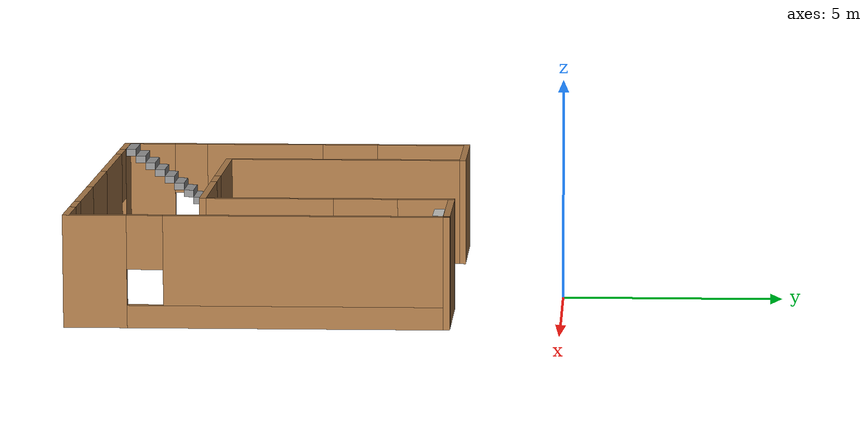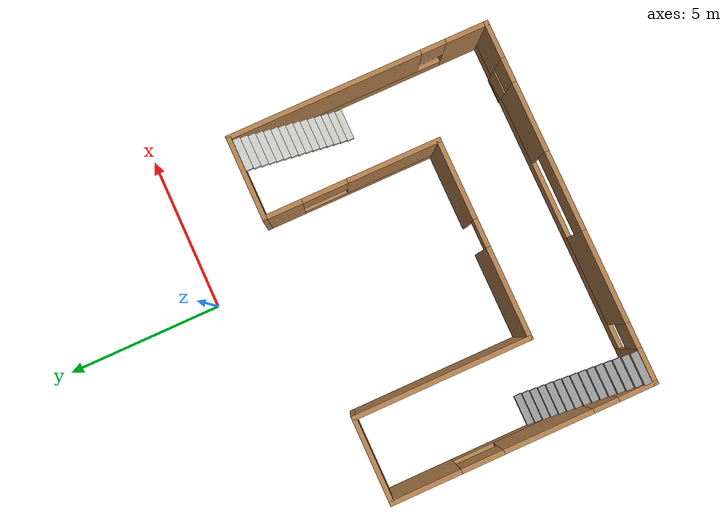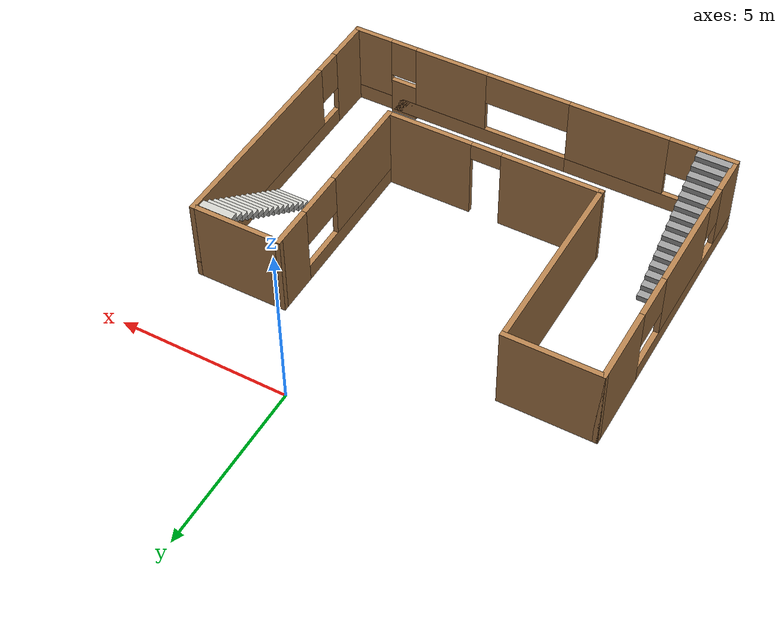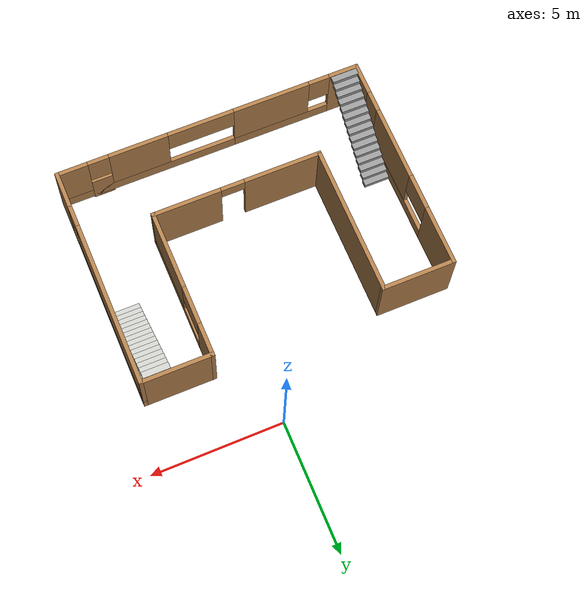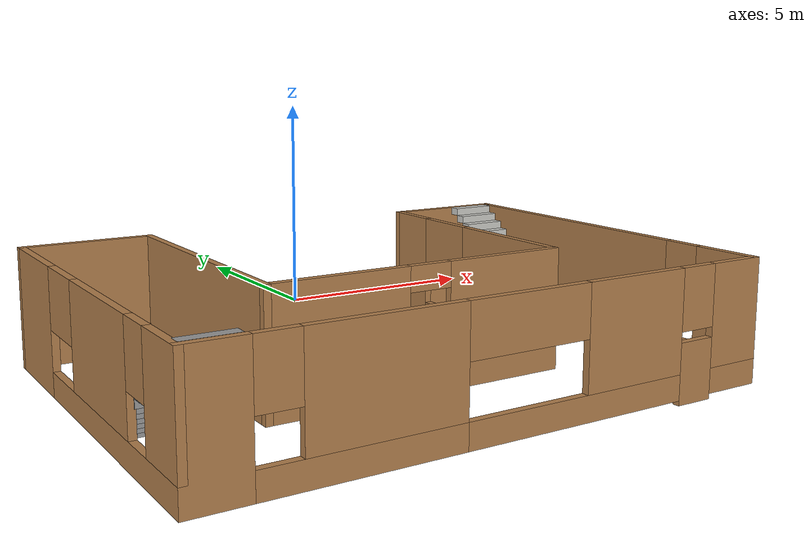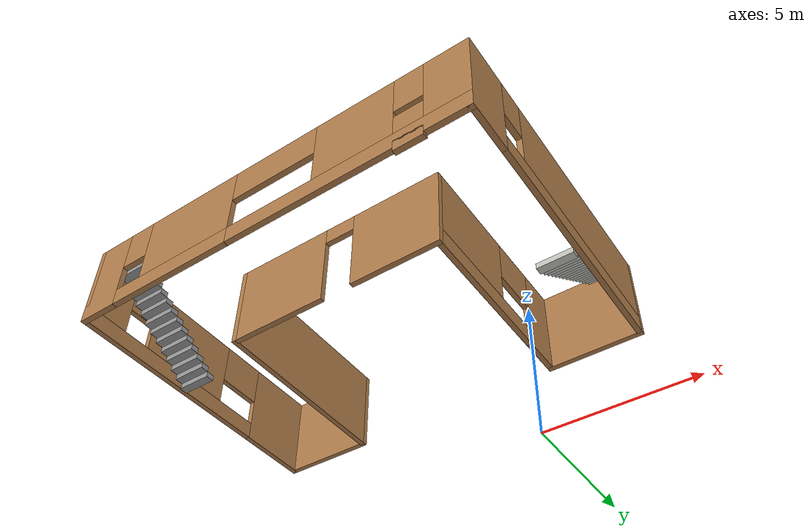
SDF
<?xml version='1.0'?>
<sdf version='1.6'>
  <model name='building0'>
    <pose frame=''>-1.57745 -6.6638 0 0 -0 0</pose>
    <link name='Stairs_0'>
      <visual name='Stairs_0_Visual_0'>
        <pose frame=''>5.18201 0.711332 0.083333 0 -0 -3.14159</pose>
        <geometry>
          <box>
            <size>1 0.233333 0.166667</size>
          </box>
        </geometry>
        <material>
          <script>
            <uri>file://media/materials/scripts/gazebo.material</uri>
            <name>Gazebo/CeilingTiled</name>
          </script>
          <ambient>1 1 1 1</ambient>
        </material>
        <meta>
          <layer>0</layer>
        </meta>
      </visual>
      <collision name='Stairs_0_Collision_0'>
        <geometry>
          <box>
            <size>1 0.233333 0.166667</size>
          </box>
        </geometry>
        <pose frame=''>5.18201 0.711332 0.083333 0 -0 -3.14159</pose>
      </collision>
      <visual name='Stairs_0_Visual_1'>
        <pose frame=''>5.18201 0.944665 0.25 0 -0 -3.14159</pose>
        <geometry>
          <box>
            <size>1 0.233333 0.166667</size>
          </box>
        </geometry>
        <material>
          <script>
            <uri>file://media/materials/scripts/gazebo.material</uri>
            <name>Gazebo/CeilingTiled</name>
          </script>
          <ambient>1 1 1 1</ambient>
        </material>
        <meta>
          <layer>0</layer>
        </meta>
      </visual>
      <collision name='Stairs_0_Collision_1'>
        <geometry>
          <box>
            <size>1 0.233333 0.166667</size>
          </box>
        </geometry>
        <pose frame=''>5.18201 0.944665 0.25 0 -0 -3.14159</pose>
      </collision>
      <visual name='Stairs_0_Visual_2'>
        <pose frame=''>5.18201 1.178 0.416667 0 -0 -3.14159</pose>
        <geometry>
          <box>
            <size>1 0.233333 0.166667</size>
          </box>
        </geometry>
        <material>
          <script>
            <uri>file://media/materials/scripts/gazebo.material</uri>
            <name>Gazebo/CeilingTiled</name>
          </script>
          <ambient>1 1 1 1</ambient>
        </material>
        <meta>
          <layer>0</layer>
        </meta>
      </visual>
      <collision name='Stairs_0_Collision_2'>
        <geometry>
          <box>
            <size>1 0.233333 0.166667</size>
          </box>
        </geometry>
        <pose frame=''>5.18201 1.178 0.416667 0 -0 -3.14159</pose>
      </collision>
      <visual name='Stairs_0_Visual_3'>
        <pose frame=''>5.18201 1.41133 0.583333 0 -0 -3.14159</pose>
        <geometry>
          <box>
            <size>1 0.233333 0.166667</size>
          </box>
        </geometry>
        <material>
          <script>
            <uri>file://media/materials/scripts/gazebo.material</uri>
            <name>Gazebo/CeilingTiled</name>
          </script>
          <ambient>1 1 1 1</ambient>
        </material>
        <meta>
          <layer>0</layer>
        </meta>
      </visual>
      <collision name='Stairs_0_Collision_3'>
        <geometry>
          <box>
            <size>1 0.233333 0.166667</size>
          </box>
        </geometry>
        <pose frame=''>5.18201 1.41133 0.583333 0 -0 -3.14159</pose>
      </collision>
      <visual name='Stairs_0_Visual_4'>
        <pose frame=''>5.18201 1.64467 0.75 0 -0 -3.14159</pose>
        <geometry>
          <box>
            <size>1 0.233333 0.166667</size>
          </box>
        </geometry>
        <material>
          <script>
            <uri>file://media/materials/scripts/gazebo.material</uri>
            <name>Gazebo/CeilingTiled</name>
          </script>
          <ambient>1 1 1 1</ambient>
        </material>
        <meta>
          <layer>0</layer>
        </meta>
      </visual>
      <collision name='Stairs_0_Collision_4'>
        <geometry>
          <box>
            <size>1 0.233333 0.166667</size>
          </box>
        </geometry>
        <pose frame=''>5.18201 1.64467 0.75 0 -0 -3.14159</pose>
      </collision>
      <visual name='Stairs_0_Visual_5'>
        <pose frame=''>5.18201 1.878 0.916667 0 -0 -3.14159</pose>
        <geometry>
          <box>
            <size>1 0.233333 0.166667</size>
          </box>
        </geometry>
        <material>
          <script>
            <uri>file://media/materials/scripts/gazebo.material</uri>
            <name>Gazebo/CeilingTiled</name>
          </script>
          <ambient>1 1 1 1</ambient>
        </material>
        <meta>
          <layer>0</layer>
        </meta>
      </visual>
      <collision name='Stairs_0_Collision_5'>
        <geometry>
          <box>
            <size>1 0.233333 0.166667</size>
          </box>
        </geometry>
        <pose frame=''>5.18201 1.878 0.916667 0 -0 -3.14159</pose>
      </collision>
      <visual name='Stairs_0_Visual_6'>
        <pose frame=''>5.18201 2.11133 1.08333 0 -0 -3.14159</pose>
        <geometry>
          <box>
            <size>1 0.233333 0.166667</size>
          </box>
        </geometry>
        <material>
          <script>
            <uri>file://media/materials/scripts/gazebo.material</uri>
            <name>Gazebo/CeilingTiled</name>
          </script>
          <ambient>1 1 1 1</ambient>
        </material>
        <meta>
          <layer>0</layer>
        </meta>
      </visual>
      <collision name='Stairs_0_Collision_6'>
        <geometry>
          <box>
            <size>1 0.233333 0.166667</size>
          </box>
        </geometry>
        <pose frame=''>5.18201 2.11133 1.08333 0 -0 -3.14159</pose>
      </collision>
      <visual name='Stairs_0_Visual_7'>
        <pose frame=''>5.18201 2.34466 1.25 0 -0 -3.14159</pose>
        <geometry>
          <box>
            <size>1 0.233333 0.166667</size>
          </box>
        </geometry>
        <material>
          <script>
            <uri>file://media/materials/scripts/gazebo.material</uri>
            <name>Gazebo/CeilingTiled</name>
          </script>
          <ambient>1 1 1 1</ambient>
        </material>
        <meta>
          <layer>0</layer>
        </meta>
      </visual>
      <collision name='Stairs_0_Collision_7'>
        <geometry>
          <box>
            <size>1 0.233333 0.166667</size>
          </box>
        </geometry>
        <pose frame=''>5.18201 2.34466 1.25 0 -0 -3.14159</pose>
      </collision>
      <visual name='Stairs_0_Visual_8'>
        <pose frame=''>5.18201 2.578 1.41667 0 -0 -3.14159</pose>
        <geometry>
          <box>
            <size>1 0.233333 0.166667</size>
          </box>
        </geometry>
        <material>
          <script>
            <uri>file://media/materials/scripts/gazebo.material</uri>
            <name>Gazebo/CeilingTiled</name>
          </script>
          <ambient>1 1 1 1</ambient>
        </material>
        <meta>
          <layer>0</layer>
        </meta>
      </visual>
      <collision name='Stairs_0_Collision_8'>
        <geometry>
          <box>
            <size>1 0.233333 0.166667</size>
          </box>
        </geometry>
        <pose frame=''>5.18201 2.578 1.41667 0 -0 -3.14159</pose>
      </collision>
      <visual name='Stairs_0_Visual_9'>
        <pose frame=''>5.18201 2.81133 1.58333 0 -0 -3.14159</pose>
        <geometry>
          <box>
            <size>1 0.233333 0.166667</size>
          </box>
        </geometry>
        <material>
          <script>
            <uri>file://media/materials/scripts/gazebo.material</uri>
            <name>Gazebo/CeilingTiled</name>
          </script>
          <ambient>1 1 1 1</ambient>
        </material>
        <meta>
          <layer>0</layer>
        </meta>
      </visual>
      <collision name='Stairs_0_Collision_9'>
        <geometry>
          <box>
            <size>1 0.233333 0.166667</size>
          </box>
        </geometry>
        <pose frame=''>5.18201 2.81133 1.58333 0 -0 -3.14159</pose>
      </collision>
      <visual name='Stairs_0_Visual_10'>
        <pose frame=''>5.18201 3.04467 1.75 0 -0 -3.14159</pose>
        <geometry>
          <box>
            <size>1 0.233333 0.166667</size>
          </box>
        </geometry>
        <material>
          <script>
            <uri>file://media/materials/scripts/gazebo.material</uri>
            <name>Gazebo/CeilingTiled</name>
          </script>
          <ambient>1 1 1 1</ambient>
        </material>
        <meta>
          <layer>0</layer>
        </meta>
      </visual>
      <collision name='Stairs_0_Collision_10'>
        <geometry>
          <box>
            <size>1 0.233333 0.166667</size>
          </box>
        </geometry>
        <pose frame=''>5.18201 3.04467 1.75 0 -0 -3.14159</pose>
      </collision>
      <visual name='Stairs_0_Visual_11'>
        <pose frame=''>5.18201 3.278 1.91667 0 -0 -3.14159</pose>
        <geometry>
          <box>
            <size>1 0.233333 0.166667</size>
          </box>
        </geometry>
        <material>
          <script>
            <uri>file://media/materials/scripts/gazebo.material</uri>
            <name>Gazebo/CeilingTiled</name>
          </script>
          <ambient>1 1 1 1</ambient>
        </material>
        <meta>
          <layer>0</layer>
        </meta>
      </visual>
      <collision name='Stairs_0_Collision_11'>
        <geometry>
          <box>
            <size>1 0.233333 0.166667</size>
          </box>
        </geometry>
        <pose frame=''>5.18201 3.278 1.91667 0 -0 -3.14159</pose>
      </collision>
      <visual name='Stairs_0_Visual_12'>
        <pose frame=''>5.18201 3.51133 2.08333 0 -0 -3.14159</pose>
        <geometry>
          <box>
            <size>1 0.233333 0.166667</size>
          </box>
        </geometry>
        <material>
          <script>
            <uri>file://media/materials/scripts/gazebo.material</uri>
            <name>Gazebo/CeilingTiled</name>
          </script>
          <ambient>1 1 1 1</ambient>
        </material>
        <meta>
          <layer>0</layer>
        </meta>
      </visual>
      <collision name='Stairs_0_Collision_12'>
        <geometry>
          <box>
            <size>1 0.233333 0.166667</size>
          </box>
        </geometry>
        <pose frame=''>5.18201 3.51133 2.08333 0 -0 -3.14159</pose>
      </collision>
      <visual name='Stairs_0_Visual_13'>
        <pose frame=''>5.18201 3.74466 2.25 0 -0 -3.14159</pose>
        <geometry>
          <box>
            <size>1 0.233333 0.166667</size>
          </box>
        </geometry>
        <material>
          <script>
            <uri>file://media/materials/scripts/gazebo.material</uri>
            <name>Gazebo/CeilingTiled</name>
          </script>
          <ambient>1 1 1 1</ambient>
        </material>
        <meta>
          <layer>0</layer>
        </meta>
      </visual>
      <collision name='Stairs_0_Collision_13'>
        <geometry>
          <box>
            <size>1 0.233333 0.166667</size>
          </box>
        </geometry>
        <pose frame=''>5.18201 3.74466 2.25 0 -0 -3.14159</pose>
      </collision>
      <visual name='Stairs_0_Visual_14'>
        <pose frame=''>5.18201 3.978 2.41667 0 -0 -3.14159</pose>
        <geometry>
          <box>
            <size>1 0.233333 0.166667</size>
          </box>
        </geometry>
        <material>
          <script>
            <uri>file://media/materials/scripts/gazebo.material</uri>
            <name>Gazebo/CeilingTiled</name>
          </script>
          <ambient>1 1 1 1</ambient>
        </material>
        <meta>
          <layer>0</layer>
        </meta>
      </visual>
      <collision name='Stairs_0_Collision_14'>
        <geometry>
          <box>
            <size>1 0.233333 0.166667</size>
          </box>
        </geometry>
        <pose frame=''>5.18201 3.978 2.41667 0 -0 -3.14159</pose>
      </collision>
    </link>
    <link name='Stairs_1'>
      <visual name='Stairs_1_Visual_0'>
        <pose frame=''>-5.25693 -0.708464 0.083333 0 -0 0</pose>
        <geometry>
          <box>
            <size>1 0.233333 0.166667</size>
          </box>
        </geometry>
        <material>
          <script>
            <uri>file://media/materials/scripts/gazebo.material</uri>
            <name>Gazebo/Grey</name>
          </script>
          <ambient>1 1 1 1</ambient>
        </material>
        <meta>
          <layer>0</layer>
        </meta>
      </visual>
      <collision name='Stairs_1_Collision_0'>
        <geometry>
          <box>
            <size>1 0.233333 0.166667</size>
          </box>
        </geometry>
        <pose frame=''>-5.25693 -0.708464 0.083333 0 -0 0</pose>
      </collision>
      <visual name='Stairs_1_Visual_1'>
        <pose frame=''>-5.25693 -0.941797 0.25 0 -0 0</pose>
        <geometry>
          <box>
            <size>1 0.233333 0.166667</size>
          </box>
        </geometry>
        <material>
          <script>
            <uri>file://media/materials/scripts/gazebo.material</uri>
            <name>Gazebo/Grey</name>
          </script>
          <ambient>1 1 1 1</ambient>
        </material>
        <meta>
          <layer>0</layer>
        </meta>
      </visual>
      <collision name='Stairs_1_Collision_1'>
        <geometry>
          <box>
            <size>1 0.233333 0.166667</size>
          </box>
        </geometry>
        <pose frame=''>-5.25693 -0.941797 0.25 0 -0 0</pose>
      </collision>
      <visual name='Stairs_1_Visual_2'>
        <pose frame=''>-5.25693 -1.17513 0.416667 0 -0 0</pose>
        <geometry>
          <box>
            <size>1 0.233333 0.166667</size>
          </box>
        </geometry>
        <material>
          <script>
            <uri>file://media/materials/scripts/gazebo.material</uri>
            <name>Gazebo/Grey</name>
          </script>
          <ambient>1 1 1 1</ambient>
        </material>
        <meta>
          <layer>0</layer>
        </meta>
      </visual>
      <collision name='Stairs_1_Collision_2'>
        <geometry>
          <box>
            <size>1 0.233333 0.166667</size>
          </box>
        </geometry>
        <pose frame=''>-5.25693 -1.17513 0.416667 0 -0 0</pose>
      </collision>
      <visual name='Stairs_1_Visual_3'>
        <pose frame=''>-5.25693 -1.40846 0.583333 0 -0 0</pose>
        <geometry>
          <box>
            <size>1 0.233333 0.166667</size>
          </box>
        </geometry>
        <material>
          <script>
            <uri>file://media/materials/scripts/gazebo.material</uri>
            <name>Gazebo/Grey</name>
          </script>
          <ambient>1 1 1 1</ambient>
        </material>
        <meta>
          <layer>0</layer>
        </meta>
      </visual>
      <collision name='Stairs_1_Collision_3'>
        <geometry>
          <box>
            <size>1 0.233333 0.166667</size>
          </box>
        </geometry>
        <pose frame=''>-5.25693 -1.40846 0.583333 0 -0 0</pose>
      </collision>
      <visual name='Stairs_1_Visual_4'>
        <pose frame=''>-5.25693 -1.6418 0.75 0 -0 0</pose>
        <geometry>
          <box>
            <size>1 0.233333 0.166667</size>
          </box>
        </geometry>
        <material>
          <script>
            <uri>file://media/materials/scripts/gazebo.material</uri>
            <name>Gazebo/Grey</name>
          </script>
          <ambient>1 1 1 1</ambient>
        </material>
        <meta>
          <layer>0</layer>
        </meta>
      </visual>
      <collision name='Stairs_1_Collision_4'>
        <geometry>
          <box>
            <size>1 0.233333 0.166667</size>
          </box>
        </geometry>
        <pose frame=''>-5.25693 -1.6418 0.75 0 -0 0</pose>
      </collision>
      <visual name='Stairs_1_Visual_5'>
        <pose frame=''>-5.25693 -1.87513 0.916667 0 -0 0</pose>
        <geometry>
          <box>
            <size>1 0.233333 0.166667</size>
          </box>
        </geometry>
        <material>
          <script>
            <uri>file://media/materials/scripts/gazebo.material</uri>
            <name>Gazebo/Grey</name>
          </script>
          <ambient>1 1 1 1</ambient>
        </material>
        <meta>
          <layer>0</layer>
        </meta>
      </visual>
      <collision name='Stairs_1_Collision_5'>
        <geometry>
          <box>
            <size>1 0.233333 0.166667</size>
          </box>
        </geometry>
        <pose frame=''>-5.25693 -1.87513 0.916667 0 -0 0</pose>
      </collision>
      <visual name='Stairs_1_Visual_6'>
        <pose frame=''>-5.25693 -2.10846 1.08333 0 -0 0</pose>
        <geometry>
          <box>
            <size>1 0.233333 0.166667</size>
          </box>
        </geometry>
        <material>
          <script>
            <uri>file://media/materials/scripts/gazebo.material</uri>
            <name>Gazebo/Grey</name>
          </script>
          <ambient>1 1 1 1</ambient>
        </material>
        <meta>
          <layer>0</layer>
        </meta>
      </visual>
      <collision name='Stairs_1_Collision_6'>
        <geometry>
          <box>
            <size>1 0.233333 0.166667</size>
          </box>
        </geometry>
        <pose frame=''>-5.25693 -2.10846 1.08333 0 -0 0</pose>
      </collision>
      <visual name='Stairs_1_Visual_7'>
        <pose frame=''>-5.25693 -2.3418 1.25 0 -0 0</pose>
        <geometry>
          <box>
            <size>1 0.233333 0.166667</size>
          </box>
        </geometry>
        <material>
          <script>
            <uri>file://media/materials/scripts/gazebo.material</uri>
            <name>Gazebo/Grey</name>
          </script>
          <ambient>1 1 1 1</ambient>
        </material>
        <meta>
          <layer>0</layer>
        </meta>
      </visual>
      <collision name='Stairs_1_Collision_7'>
        <geometry>
          <box>
            <size>1 0.233333 0.166667</size>
          </box>
        </geometry>
        <pose frame=''>-5.25693 -2.3418 1.25 0 -0 0</pose>
      </collision>
      <visual name='Stairs_1_Visual_8'>
        <pose frame=''>-5.25693 -2.57513 1.41667 0 -0 0</pose>
        <geometry>
          <box>
            <size>1 0.233333 0.166667</size>
          </box>
        </geometry>
        <material>
          <script>
            <uri>file://media/materials/scripts/gazebo.material</uri>
            <name>Gazebo/Grey</name>
          </script>
          <ambient>1 1 1 1</ambient>
        </material>
        <meta>
          <layer>0</layer>
        </meta>
      </visual>
      <collision name='Stairs_1_Collision_8'>
        <geometry>
          <box>
            <size>1 0.233333 0.166667</size>
          </box>
        </geometry>
        <pose frame=''>-5.25693 -2.57513 1.41667 0 -0 0</pose>
      </collision>
      <visual name='Stairs_1_Visual_9'>
        <pose frame=''>-5.25693 -2.80846 1.58333 0 -0 0</pose>
        <geometry>
          <box>
            <size>1 0.233333 0.166667</size>
          </box>
        </geometry>
        <material>
          <script>
            <uri>file://media/materials/scripts/gazebo.material</uri>
            <name>Gazebo/Grey</name>
          </script>
          <ambient>1 1 1 1</ambient>
        </material>
        <meta>
          <layer>0</layer>
        </meta>
      </visual>
      <collision name='Stairs_1_Collision_9'>
        <geometry>
          <box>
            <size>1 0.233333 0.166667</size>
          </box>
        </geometry>
        <pose frame=''>-5.25693 -2.80846 1.58333 0 -0 0</pose>
      </collision>
      <visual name='Stairs_1_Visual_10'>
        <pose frame=''>-5.25693 -3.0418 1.75 0 -0 0</pose>
        <geometry>
          <box>
            <size>1 0.233333 0.166667</size>
          </box>
        </geometry>
        <material>
          <script>
            <uri>file://media/materials/scripts/gazebo.material</uri>
            <name>Gazebo/Grey</name>
          </script>
          <ambient>1 1 1 1</ambient>
        </material>
        <meta>
          <layer>0</layer>
        </meta>
      </visual>
      <collision name='Stairs_1_Collision_10'>
        <geometry>
          <box>
            <size>1 0.233333 0.166667</size>
          </box>
        </geometry>
        <pose frame=''>-5.25693 -3.0418 1.75 0 -0 0</pose>
      </collision>
      <visual name='Stairs_1_Visual_11'>
        <pose frame=''>-5.25693 -3.27513 1.91667 0 -0 0</pose>
        <geometry>
          <box>
            <size>1 0.233333 0.166667</size>
          </box>
        </geometry>
        <material>
          <script>
            <uri>file://media/materials/scripts/gazebo.material</uri>
            <name>Gazebo/Grey</name>
          </script>
          <ambient>1 1 1 1</ambient>
        </material>
        <meta>
          <layer>0</layer>
        </meta>
      </visual>
      <collision name='Stairs_1_Collision_11'>
        <geometry>
          <box>
            <size>1 0.233333 0.166667</size>
          </box>
        </geometry>
        <pose frame=''>-5.25693 -3.27513 1.91667 0 -0 0</pose>
      </collision>
      <visual name='Stairs_1_Visual_12'>
        <pose frame=''>-5.25693 -3.50846 2.08333 0 -0 0</pose>
        <geometry>
          <box>
            <size>1 0.233333 0.166667</size>
          </box>
        </geometry>
        <material>
          <script>
            <uri>file://media/materials/scripts/gazebo.material</uri>
            <name>Gazebo/Grey</name>
          </script>
          <ambient>1 1 1 1</ambient>
        </material>
        <meta>
          <layer>0</layer>
        </meta>
      </visual>
      <collision name='Stairs_1_Collision_12'>
        <geometry>
          <box>
            <size>1 0.233333 0.166667</size>
          </box>
        </geometry>
        <pose frame=''>-5.25693 -3.50846 2.08333 0 -0 0</pose>
      </collision>
      <visual name='Stairs_1_Visual_13'>
        <pose frame=''>-5.25693 -3.7418 2.25 0 -0 0</pose>
        <geometry>
          <box>
            <size>1 0.233333 0.166667</size>
          </box>
        </geometry>
        <material>
          <script>
            <uri>file://media/materials/scripts/gazebo.material</uri>
            <name>Gazebo/Grey</name>
          </script>
          <ambient>1 1 1 1</ambient>
        </material>
        <meta>
          <layer>0</layer>
        </meta>
      </visual>
      <collision name='Stairs_1_Collision_13'>
        <geometry>
          <box>
            <size>1 0.233333 0.166667</size>
          </box>
        </geometry>
        <pose frame=''>-5.25693 -3.7418 2.25 0 -0 0</pose>
      </collision>
      <visual name='Stairs_1_Visual_14'>
        <pose frame=''>-5.25693 -3.97513 2.41667 0 -0 0</pose>
        <geometry>
          <box>
            <size>1 0.233333 0.166667</size>
          </box>
        </geometry>
        <material>
          <script>
            <uri>file://media/materials/scripts/gazebo.material</uri>
            <name>Gazebo/Grey</name>
          </script>
          <ambient>1 1 1 1</ambient>
        </material>
        <meta>
          <layer>0</layer>
        </meta>
      </visual>
      <collision name='Stairs_1_Collision_14'>
        <geometry>
          <box>
            <size>1 0.233333 0.166667</size>
          </box>
        </geometry>
        <pose frame=''>-5.25693 -3.97513 2.41667 0 -0 0</pose>
      </collision>
    </link>
    <link name='Wall_29'>
      <pose frame=''>-5.8 0 0 0 0 -1.5708</pose>
      <visual name='Wall_29_Visual_0'>
        <pose frame=''>-3.11517 0 1.25 0 -0 0</pose>
        <geometry>
          <box>
            <size>2.26965 0.15 2.5</size>
          </box>
        </geometry>
        <material>
          <script>
            <uri>file://media/materials/scripts/gazebo.material</uri>
            <name>Gazebo/Wood</name>
          </script>
          <ambient>1 0.764706 0.305882 1</ambient>
        </material>
        <meta>
          <layer>0</layer>
        </meta>
      </visual>
      <collision name='Wall_29_Collision_0'>
        <geometry>
          <box>
            <size>2.26965 0.15 2.5</size>
          </box>
        </geometry>
        <pose frame=''>-3.11517 0 1.25 0 -0 0</pose>
      </collision>
      <visual name='Wall_29_Visual_1'>
        <pose frame=''>1.13482 0 0.25 0 -0 0</pose>
        <geometry>
          <box>
            <size>6.23035 0.15 0.5</size>
          </box>
        </geometry>
        <material>
          <script>
            <uri>file://media/materials/scripts/gazebo.material</uri>
            <name>Gazebo/Wood</name>
          </script>
          <ambient>1 0.764706 0.305882 1</ambient>
        </material>
        <meta>
          <layer>0</layer>
        </meta>
      </visual>
      <collision name='Wall_29_Collision_1'>
        <geometry>
          <box>
            <size>6.23035 0.15 0.5</size>
          </box>
        </geometry>
        <pose frame=''>1.13482 0 0.25 0 -0 0</pose>
      </collision>
      <visual name='Wall_29_Visual_2'>
        <pose frame=''>0.782995 0 1.5 0 -0 0</pose>
        <geometry>
          <box>
            <size>2.84056 0.15 2</size>
          </box>
        </geometry>
        <material>
          <script>
            <uri>file://media/materials/scripts/gazebo.material</uri>
            <name>Gazebo/Wood</name>
          </script>
          <ambient>1 0.764706 0.305882 1</ambient>
        </material>
        <meta>
          <layer>0</layer>
        </meta>
      </visual>
      <collision name='Wall_29_Collision_2'>
        <geometry>
          <box>
            <size>2.84056 0.15 2</size>
          </box>
        </geometry>
        <pose frame=''>0.782995 0 1.5 0 -0 0</pose>
      </collision>
      <visual name='Wall_29_Visual_3'>
        <pose frame=''>3.62664 0 1.5 0 -0 0</pose>
        <geometry>
          <box>
            <size>1.24673 0.15 2</size>
          </box>
        </geometry>
        <material>
          <script>
            <uri>file://media/materials/scripts/gazebo.material</uri>
            <name>Gazebo/Wood</name>
          </script>
          <ambient>1 0.764706 0.305882 1</ambient>
        </material>
        <meta>
          <layer>0</layer>
        </meta>
      </visual>
      <collision name='Wall_29_Collision_3'>
        <geometry>
          <box>
            <size>1.24673 0.15 2</size>
          </box>
        </geometry>
        <pose frame=''>3.62664 0 1.5 0 -0 0</pose>
      </collision>
      <visual name='Wall_29_Visual_4'>
        <pose frame=''>-1.30882 0 1.9 0 -0 0</pose>
        <geometry>
          <box>
            <size>1.34307 0.15 1.2</size>
          </box>
        </geometry>
        <material>
          <script>
            <uri>file://media/materials/scripts/gazebo.material</uri>
            <name>Gazebo/Wood</name>
          </script>
          <ambient>1 0.764706 0.305882 1</ambient>
        </material>
        <meta>
          <layer>0</layer>
        </meta>
      </visual>
      <collision name='Wall_29_Collision_4'>
        <geometry>
          <box>
            <size>1.34307 0.15 1.2</size>
          </box>
        </geometry>
        <pose frame=''>-1.30882 0 1.9 0 -0 0</pose>
      </collision>
      <visual name='Wall_29_Visual_5'>
        <pose frame=''>2.60327 0 1.9 0 -0 0</pose>
        <geometry>
          <box>
            <size>0.8 0.15 1.2</size>
          </box>
        </geometry>
        <material>
          <script>
            <uri>file://media/materials/scripts/gazebo.material</uri>
            <name>Gazebo/Wood</name>
          </script>
          <ambient>1 0.764706 0.305882 1</ambient>
        </material>
        <meta>
          <layer>0</layer>
        </meta>
      </visual>
      <collision name='Wall_29_Collision_5'>
        <geometry>
          <box>
            <size>0.8 0.15 1.2</size>
          </box>
        </geometry>
        <pose frame=''>2.60327 0 1.9 0 -0 0</pose>
      </collision>
    </link>
    <link name='Wall_30'>
      <pose frame=''>0 -4.175 0 0 -0 0</pose>
      <visual name='Wall_30_Visual_0'>
        <pose frame=''>-5.2933 0 1.25 0 -0 0</pose>
        <geometry>
          <box>
            <size>1.1634 0.15 2.5</size>
          </box>
        </geometry>
        <material>
          <script>
            <uri>file://media/materials/scripts/gazebo.material</uri>
            <name>Gazebo/Wood</name>
          </script>
          <ambient>1 0.764706 0.305882 1</ambient>
        </material>
        <meta>
          <layer>0</layer>
        </meta>
      </visual>
      <collision name='Wall_30_Collision_0'>
        <geometry>
          <box>
            <size>1.1634 0.15 2.5</size>
          </box>
        </geometry>
        <pose frame=''>-5.2933 0 1.25 0 -0 0</pose>
      </collision>
      <visual name='Wall_30_Visual_1'>
        <pose frame=''>-2.83101 0 0.25 0 -0 0</pose>
        <geometry>
          <box>
            <size>3.76118 0.15 0.5</size>
          </box>
        </geometry>
        <material>
          <script>
            <uri>file://media/materials/scripts/gazebo.material</uri>
            <name>Gazebo/Wood</name>
          </script>
          <ambient>1 0.764706 0.305882 1</ambient>
        </material>
        <meta>
          <layer>0</layer>
        </meta>
      </visual>
      <collision name='Wall_30_Collision_1'>
        <geometry>
          <box>
            <size>3.76118 0.15 0.5</size>
          </box>
        </geometry>
        <pose frame=''>-2.83101 0 0.25 0 -0 0</pose>
      </collision>
      <visual name='Wall_30_Visual_2'>
        <pose frame=''>2.46229 0 0.25 0 -0 0</pose>
        <geometry>
          <box>
            <size>6.82542 0.15 0.5</size>
          </box>
        </geometry>
        <material>
          <script>
            <uri>file://media/materials/scripts/gazebo.material</uri>
            <name>Gazebo/Wood</name>
          </script>
          <ambient>1 0.764706 0.305882 1</ambient>
        </material>
        <meta>
          <layer>0</layer>
        </meta>
      </visual>
      <collision name='Wall_30_Collision_2'>
        <geometry>
          <box>
            <size>6.82542 0.15 0.5</size>
          </box>
        </geometry>
        <pose frame=''>2.46229 0 0.25 0 -0 0</pose>
      </collision>
      <visual name='Wall_30_Visual_3'>
        <pose frame=''>2.72818 0 1.5 0 -0 0</pose>
        <geometry>
          <box>
            <size>2.2572 0.15 2</size>
          </box>
        </geometry>
        <material>
          <script>
            <uri>file://media/materials/scripts/gazebo.material</uri>
            <name>Gazebo/Wood</name>
          </script>
          <ambient>1 0.764706 0.305882 1</ambient>
        </material>
        <meta>
          <layer>0</layer>
        </meta>
      </visual>
      <collision name='Wall_30_Collision_3'>
        <geometry>
          <box>
            <size>2.2572 0.15 2</size>
          </box>
        </geometry>
        <pose frame=''>2.72818 0 1.5 0 -0 0</pose>
      </collision>
      <visual name='Wall_30_Visual_4'>
        <pose frame=''>5.26589 0 1.5 0 -0 0</pose>
        <geometry>
          <box>
            <size>1.21821 0.15 2</size>
          </box>
        </geometry>
        <material>
          <script>
            <uri>file://media/materials/scripts/gazebo.material</uri>
            <name>Gazebo/Wood</name>
          </script>
          <ambient>1 0.764706 0.305882 1</ambient>
        </material>
        <meta>
          <layer>0</layer>
        </meta>
      </visual>
      <collision name='Wall_30_Collision_4'>
        <geometry>
          <box>
            <size>1.21821 0.15 2</size>
          </box>
        </geometry>
        <pose frame=''>5.26589 0 1.5 0 -0 0</pose>
      </collision>
      <visual name='Wall_30_Visual_5'>
        <pose frame=''>4.25679 0 0.5 0 -0 0</pose>
        <geometry>
          <box>
            <size>0.8 0.15 1.2</size>
          </box>
        </geometry>
        <material>
          <script>
            <uri>file://media/materials/scripts/gazebo.material</uri>
            <name>Gazebo/Wood</name>
          </script>
          <ambient>1 0.764706 0.305882 1</ambient>
        </material>
        <meta>
          <layer>0</layer>
        </meta>
      </visual>
      <collision name='Wall_30_Collision_5'>
        <geometry>
          <box>
            <size>0.8 0.15 1.2</size>
          </box>
        </geometry>
        <pose frame=''>4.25679 0 0.5 0 -0 0</pose>
      </collision>
      <visual name='Wall_30_Visual_6'>
        <pose frame=''>-2.43101 0 1.5 0 -0 0</pose>
        <geometry>
          <box>
            <size>2.96118 0.15 2</size>
          </box>
        </geometry>
        <material>
          <script>
            <uri>file://media/materials/scripts/gazebo.material</uri>
            <name>Gazebo/Wood</name>
          </script>
          <ambient>1 0.764706 0.305882 1</ambient>
        </material>
        <meta>
          <layer>0</layer>
        </meta>
      </visual>
      <collision name='Wall_30_Collision_6'>
        <geometry>
          <box>
            <size>2.96118 0.15 2</size>
          </box>
        </geometry>
        <pose frame=''>-2.43101 0 1.5 0 -0 0</pose>
      </collision>
      <visual name='Wall_30_Visual_7'>
        <pose frame=''>-2.43101 0 1.5 0 -0 0</pose>
        <geometry>
          <box>
            <size>2.96118 0.15 2</size>
          </box>
        </geometry>
        <material>
          <script>
            <uri>file://media/materials/scripts/gazebo.material</uri>
            <name>Gazebo/Wood</name>
          </script>
          <ambient>1 0.764706 0.305882 1</ambient>
        </material>
        <meta>
          <layer>0</layer>
        </meta>
      </visual>
      <collision name='Wall_30_Collision_7'>
        <geometry>
          <box>
            <size>2.96118 0.15 2</size>
          </box>
        </geometry>
        <pose frame=''>-2.43101 0 1.5 0 -0 0</pose>
      </collision>
      <visual name='Wall_30_Visual_8'>
        <pose frame=''>-4.3116 0 1.9 0 -0 0</pose>
        <geometry>
          <box>
            <size>0.8 0.15 1.2</size>
          </box>
        </geometry>
        <material>
          <script>
            <uri>file://media/materials/scripts/gazebo.material</uri>
            <name>Gazebo/Wood</name>
          </script>
          <ambient>1 0.764706 0.305882 1</ambient>
        </material>
        <meta>
          <layer>0</layer>
        </meta>
      </visual>
      <collision name='Wall_30_Collision_8'>
        <geometry>
          <box>
            <size>0.8 0.15 1.2</size>
          </box>
        </geometry>
        <pose frame=''>-4.3116 0 1.9 0 -0 0</pose>
      </collision>
      <visual name='Wall_30_Visual_9'>
        <pose frame=''>4.25679 0 1.9 0 -0 0</pose>
        <geometry>
          <box>
            <size>0.8 0.15 1.2</size>
          </box>
        </geometry>
        <material>
          <script>
            <uri>file://media/materials/scripts/gazebo.material</uri>
            <name>Gazebo/Wood</name>
          </script>
          <ambient>1 0.764706 0.305882 1</ambient>
        </material>
        <meta>
          <layer>0</layer>
        </meta>
      </visual>
      <collision name='Wall_30_Collision_9'>
        <geometry>
          <box>
            <size>0.8 0.15 1.2</size>
          </box>
        </geometry>
        <pose frame=''>4.25679 0 1.9 0 -0 0</pose>
      </collision>
      <visual name='Wall_30_Visual_10'>
        <pose frame=''>0.324583 0 2 0 -0 0</pose>
        <geometry>
          <box>
            <size>2.55 0.15 1</size>
          </box>
        </geometry>
        <material>
          <script>
            <uri>file://media/materials/scripts/gazebo.material</uri>
            <name>Gazebo/Wood</name>
          </script>
          <ambient>1 0.764706 0.305882 1</ambient>
        </material>
        <meta>
          <layer>0</layer>
        </meta>
      </visual>
      <collision name='Wall_30_Collision_10'>
        <geometry>
          <box>
            <size>2.55 0.15 1</size>
          </box>
        </geometry>
        <pose frame=''>0.324583 0 2 0 -0 0</pose>
      </collision>
      <visual name='Wall_30_Visual_11'>
        <pose frame=''>0.324583 0 2 0 -0 0</pose>
        <geometry>
          <box>
            <size>2.55 0.15 1</size>
          </box>
        </geometry>
        <material>
          <script>
            <uri>file://media/materials/scripts/gazebo.material</uri>
            <name>Gazebo/Wood</name>
          </script>
          <ambient>1 0.764706 0.305882 1</ambient>
        </material>
        <meta>
          <layer>0</layer>
        </meta>
      </visual>
      <collision name='Wall_30_Collision_11'>
        <geometry>
          <box>
            <size>2.55 0.15 1</size>
          </box>
        </geometry>
        <pose frame=''>0.324583 0 2 0 -0 0</pose>
      </collision>
    </link>
    <link name='Wall_31'>
      <pose frame=''>5.8 0 0 0 -0 1.5708</pose>
      <visual name='Wall_31_Visual_0'>
        <pose frame=''>-3.54618 0 1.25 0 -0 0</pose>
        <geometry>
          <box>
            <size>1.40763 0.15 2.5</size>
          </box>
        </geometry>
        <material>
          <script>
            <uri>file://media/materials/scripts/gazebo.material</uri>
            <name>Gazebo/Wood</name>
          </script>
          <ambient>1 0.764706 0.305882 1</ambient>
        </material>
        <meta>
          <layer>0</layer>
        </meta>
      </visual>
      <collision name='Wall_31_Collision_0'>
        <geometry>
          <box>
            <size>1.40763 0.15 2.5</size>
          </box>
        </geometry>
        <pose frame=''>-3.54618 0 1.25 0 -0 0</pose>
      </collision>
      <visual name='Wall_31_Visual_1'>
        <pose frame=''>0.703818 0 0.25 0 -0 0</pose>
        <geometry>
          <box>
            <size>7.09237 0.15 0.5</size>
          </box>
        </geometry>
        <material>
          <script>
            <uri>file://media/materials/scripts/gazebo.material</uri>
            <name>Gazebo/Wood</name>
          </script>
          <ambient>1 0.764706 0.305882 1</ambient>
        </material>
        <meta>
          <layer>0</layer>
        </meta>
      </visual>
      <collision name='Wall_31_Collision_1'>
        <geometry>
          <box>
            <size>7.09237 0.15 0.5</size>
          </box>
        </geometry>
        <pose frame=''>0.703818 0 0.25 0 -0 0</pose>
      </collision>
      <visual name='Wall_31_Visual_2'>
        <pose frame=''>1.10382 0 1.5 0 -0 0</pose>
        <geometry>
          <box>
            <size>6.29237 0.15 2</size>
          </box>
        </geometry>
        <material>
          <script>
            <uri>file://media/materials/scripts/gazebo.material</uri>
            <name>Gazebo/Wood</name>
          </script>
          <ambient>1 0.764706 0.305882 1</ambient>
        </material>
        <meta>
          <layer>0</layer>
        </meta>
      </visual>
      <collision name='Wall_31_Collision_2'>
        <geometry>
          <box>
            <size>6.29237 0.15 2</size>
          </box>
        </geometry>
        <pose frame=''>1.10382 0 1.5 0 -0 0</pose>
      </collision>
      <visual name='Wall_31_Visual_3'>
        <pose frame=''>-2.44237 0 1.9 0 -0 0</pose>
        <geometry>
          <box>
            <size>0.8 0.15 1.2</size>
          </box>
        </geometry>
        <material>
          <script>
            <uri>file://media/materials/scripts/gazebo.material</uri>
            <name>Gazebo/Wood</name>
          </script>
          <ambient>1 0.764706 0.305882 1</ambient>
        </material>
        <meta>
          <layer>0</layer>
        </meta>
      </visual>
      <collision name='Wall_31_Collision_3'>
        <geometry>
          <box>
            <size>0.8 0.15 1.2</size>
          </box>
        </geometry>
        <pose frame=''>-2.44237 0 1.9 0 -0 0</pose>
      </collision>
    </link>
    <link name='Wall_32'>
      <collision name='Wall_32_Collision'>
        <geometry>
          <box>
            <size>2.75 0.15 2.5</size>
          </box>
        </geometry>
        <pose frame=''>0 0 1.25 0 -0 0</pose>
      </collision>
      <visual name='Wall_32_Visual'>
        <pose frame=''>0 0 1.25 0 -0 0</pose>
        <geometry>
          <box>
            <size>2.75 0.15 2.5</size>
          </box>
        </geometry>
        <material>
          <script>
            <uri>file://media/materials/scripts/gazebo.material</uri>
            <name>Gazebo/Wood</name>
          </script>
          <ambient>1 0.764706 0.305882 1</ambient>
        </material>
        <meta>
          <layer>0</layer>
        </meta>
      </visual>
      <pose frame=''>4.5 4.175 0 0 -0 3.14159</pose>
    </link>
    <link name='Wall_33'>
      <pose frame=''>3.2 1.375 0 0 0 -1.5708</pose>
      <visual name='Wall_33_Visual_0'>
        <pose frame=''>-2.23296 0 1.25 0 -0 0</pose>
        <geometry>
          <box>
            <size>1.28409 0.15 2.5</size>
          </box>
        </geometry>
        <material>
          <script>
            <uri>file://media/materials/scripts/gazebo.material</uri>
            <name>Gazebo/Wood</name>
          </script>
          <ambient>1 0.764706 0.305882 1</ambient>
        </material>
        <meta>
          <layer>0</layer>
        </meta>
      </visual>
      <collision name='Wall_33_Collision_0'>
        <geometry>
          <box>
            <size>1.28409 0.15 2.5</size>
          </box>
        </geometry>
        <pose frame=''>-2.23296 0 1.25 0 -0 0</pose>
      </collision>
      <visual name='Wall_33_Visual_1'>
        <pose frame=''>0.642043 0 0.25 0 -0 0</pose>
        <geometry>
          <box>
            <size>4.46591 0.15 0.5</size>
          </box>
        </geometry>
        <material>
          <script>
            <uri>file://media/materials/scripts/gazebo.material</uri>
            <name>Gazebo/Wood</name>
          </script>
          <ambient>1 0.764706 0.305882 1</ambient>
        </material>
        <meta>
          <layer>0</layer>
        </meta>
      </visual>
      <collision name='Wall_33_Collision_1'>
        <geometry>
          <box>
            <size>4.46591 0.15 0.5</size>
          </box>
        </geometry>
        <pose frame=''>0.642043 0 0.25 0 -0 0</pose>
      </collision>
      <visual name='Wall_33_Visual_2'>
        <pose frame=''>1.36386 0 1.5 0 -0 0</pose>
        <geometry>
          <box>
            <size>3.02228 0.15 2</size>
          </box>
        </geometry>
        <material>
          <script>
            <uri>file://media/materials/scripts/gazebo.material</uri>
            <name>Gazebo/Wood</name>
          </script>
          <ambient>1 0.764706 0.305882 1</ambient>
        </material>
        <meta>
          <layer>0</layer>
        </meta>
      </visual>
      <collision name='Wall_33_Collision_2'>
        <geometry>
          <box>
            <size>3.02228 0.15 2</size>
          </box>
        </geometry>
        <pose frame=''>1.36386 0 1.5 0 -0 0</pose>
      </collision>
      <visual name='Wall_33_Visual_3'>
        <pose frame=''>-0.869097 0 1.9 0 -0 0</pose>
        <geometry>
          <box>
            <size>1.44363 0.15 1.2</size>
          </box>
        </geometry>
        <material>
          <script>
            <uri>file://media/materials/scripts/gazebo.material</uri>
            <name>Gazebo/Wood</name>
          </script>
          <ambient>1 0.764706 0.305882 1</ambient>
        </material>
        <meta>
          <layer>0</layer>
        </meta>
      </visual>
      <collision name='Wall_33_Collision_3'>
        <geometry>
          <box>
            <size>1.44363 0.15 1.2</size>
          </box>
        </geometry>
        <pose frame=''>-0.869097 0 1.9 0 -0 0</pose>
      </collision>
    </link>
    <link name='Wall_34'>
      <pose frame=''>0.025 -1.425 0 0 -0 3.14159</pose>
      <visual name='Wall_34_Visual_0'>
        <pose frame=''>-1.93442 0 1.25 0 -0 0</pose>
        <geometry>
          <box>
            <size>2.63116 0.15 2.5</size>
          </box>
        </geometry>
        <material>
          <script>
            <uri>file://media/materials/scripts/gazebo.material</uri>
            <name>Gazebo/Wood</name>
          </script>
          <ambient>1 0.764706 0.305882 1</ambient>
        </material>
        <meta>
          <layer>0</layer>
        </meta>
      </visual>
      <collision name='Wall_34_Collision_0'>
        <geometry>
          <box>
            <size>2.63116 0.15 2.5</size>
          </box>
        </geometry>
        <pose frame=''>-1.93442 0 1.25 0 -0 0</pose>
      </collision>
      <visual name='Wall_34_Visual_1'>
        <pose frame=''>1.76558 0 1.25 0 -0 0</pose>
        <geometry>
          <box>
            <size>2.96884 0.15 2.5</size>
          </box>
        </geometry>
        <material>
          <script>
            <uri>file://media/materials/scripts/gazebo.material</uri>
            <name>Gazebo/Wood</name>
          </script>
          <ambient>1 0.764706 0.305882 1</ambient>
        </material>
        <meta>
          <layer>0</layer>
        </meta>
      </visual>
      <collision name='Wall_34_Collision_1'>
        <geometry>
          <box>
            <size>2.96884 0.15 2.5</size>
          </box>
        </geometry>
        <pose frame=''>1.76558 0 1.25 0 -0 0</pose>
      </collision>
      <visual name='Wall_34_Visual_2'>
        <pose frame=''>-0.168844 0 2.25 0 -0 0</pose>
        <geometry>
          <box>
            <size>0.9 0.15 0.5</size>
          </box>
        </geometry>
        <material>
          <script>
            <uri>file://media/materials/scripts/gazebo.material</uri>
            <name>Gazebo/Wood</name>
          </script>
          <ambient>1 0.764706 0.305882 1</ambient>
        </material>
        <meta>
          <layer>0</layer>
        </meta>
      </visual>
      <collision name='Wall_34_Collision_2'>
        <geometry>
          <box>
            <size>0.9 0.15 0.5</size>
          </box>
        </geometry>
        <pose frame=''>-0.168844 0 2.25 0 -0 0</pose>
      </collision>
    </link>
    <link name='Wall_35'>
      <collision name='Wall_35_Collision'>
        <geometry>
          <box>
            <size>5.75 0.15 2.5</size>
          </box>
        </geometry>
        <pose frame=''>0 0 1.25 0 -0 0</pose>
      </collision>
      <visual name='Wall_35_Visual'>
        <pose frame=''>0 0 1.25 0 -0 0</pose>
        <geometry>
          <box>
            <size>5.75 0.15 2.5</size>
          </box>
        </geometry>
        <material>
          <script>
            <uri>file://media/materials/scripts/gazebo.material</uri>
            <name>Gazebo/Wood</name>
          </script>
          <ambient>1 0.764706 0.305882 1</ambient>
        </material>
        <meta>
          <layer>0</layer>
        </meta>
      </visual>
      <pose frame=''>-3.15 1.375 0 0 -0 1.5708</pose>
    </link>
    <link name='Wall_36'>
      <collision name='Wall_36_Collision'>
        <geometry>
          <box>
            <size>2.8 0.15 2.5</size>
          </box>
        </geometry>
        <pose frame=''>0 0 1.25 0 -0 0</pose>
      </collision>
      <visual name='Wall_36_Visual'>
        <pose frame=''>0 0 1.25 0 -0 0</pose>
        <geometry>
          <box>
            <size>2.8 0.15 2.5</size>
          </box>
        </geometry>
        <material>
          <script>
            <uri>file://media/materials/scripts/gazebo.material</uri>
            <name>Gazebo/Wood</name>
          </script>
          <ambient>1 0.764706 0.305882 1</ambient>
        </material>
        <meta>
          <layer>0</layer>
        </meta>
      </visual>
      <pose frame=''>-4.475 4.175 0 0 0 -3.14159</pose>
    </link>
    <static>1</static>
  </model>
</sdf>
